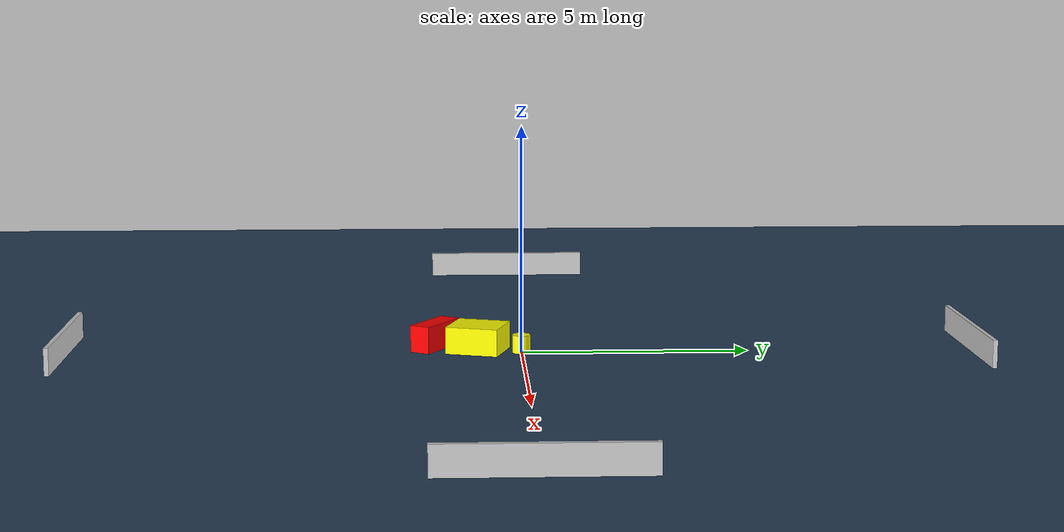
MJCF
<?xml version="1.0" ?>
<mujoco model="generated_environment">
  <option timestep="0.01" integrator="RK4" cone="elliptic"/>
  <default>
    <geom density="1"/>
  </default>
  <asset>
    <texture builtin="gradient" height="3072" name="skybox" rgb1="0.3 0.5 0.7" rgb2="0 0 0" type="skybox" width="512"/>
    <texture builtin="checker" height="300" name="groundplane" rgb1="0.2 0.3 0.4" rgb2="0.1 0.2 0.3" type="2d" width="300"/>
    <material name="groundplane" reflectance="0.2" texrepeat="5 5" texture="groundplane"/>
  </asset>
  <worldbody>
    <light dir="0 0 -1" directional="true" pos="0 0 1.5"/>
    <geom condim="3" friction="0.5 0.005 0.001" material="groundplane" name="floor" pos="0 0 0" size="0 0 0.05" type="plane"/>
    <body name="walls">
      <geom name="wall_1" condim="4" pos="-10.0 0.0 0.3" rgba="0.800000011920929 0.800000011920929 0.800000011920929 1.0" size="0.05 2.0 0.3" type="box"/>
      <geom name="wall_2" condim="4" pos="10.0 0.0 0.3" rgba="0.800000011920929 0.800000011920929 0.800000011920929 1.0" size="0.05 2.0 0.3" type="box"/>
      <geom name="wall_3" condim="4" pos="0.0 -10.0 0.3" rgba="0.800000011920929 0.800000011920929 0.800000011920929 1.0" size="2.0 0.05 0.3" type="box"/>
      <geom name="wall_4" condim="4" pos="0.0 10.0 0.3" rgba="0.800000011920929 0.800000011920929 0.800000011920929 1.0" size="2.0 0.05 0.3" type="box"/>
    </body>
    <body name="robot">
      <joint name="joint_x" type="slide" pos="0 0 0" axis="1 0 0"/>
      <joint name="joint_y" type="slide" pos="0 0 0" axis="0 1 0"/>
      <geom name="robot" type="cylinder" pos="0.0 0.0 0.2" size="0.2 0.2 0.0" mass="5.0" friction="1.0 0.005 0.0001" condim="4" rgba="1.0 1.0 0.0 1.0"/>
    </body>
    <body name="obstacle_1_movable">
      <geom name="obstacle_1_movable" condim="4" pos="-0.21513346281630408 -0.9547809656888359 0.3" euler="0 0 252.43317919100517" friction="0.0 0.005 0.001" rgba="1.0 1.0 0.0 1.0" size="0.5890646297969033 0.5288221371493269 0.3" type="box" mass="0.1"/>
      <joint type="free"/>
    </body>
    <body name="obstacle_2_static">
      <geom name="obstacle_2_static" condim="4" pos="-0.5348494093805747 -1.90375933012984 0.3" euler="0 0 57.54127327086032" friction="0.0 0.005 0.001" rgba="1.0 0.0 0.0 1.0" size="0.23700368494893592 0.6333436986400327 0.3" type="box"/>
    </body>
  </worldbody>
  <actuator>
    <motor name="actuator_x" joint="joint_x" gear="1" ctrlrange="-1 1"/>
    <motor name="actuator_y" joint="joint_y" gear="1" ctrlrange="-1 1"/>
  </actuator>
</mujoco>
